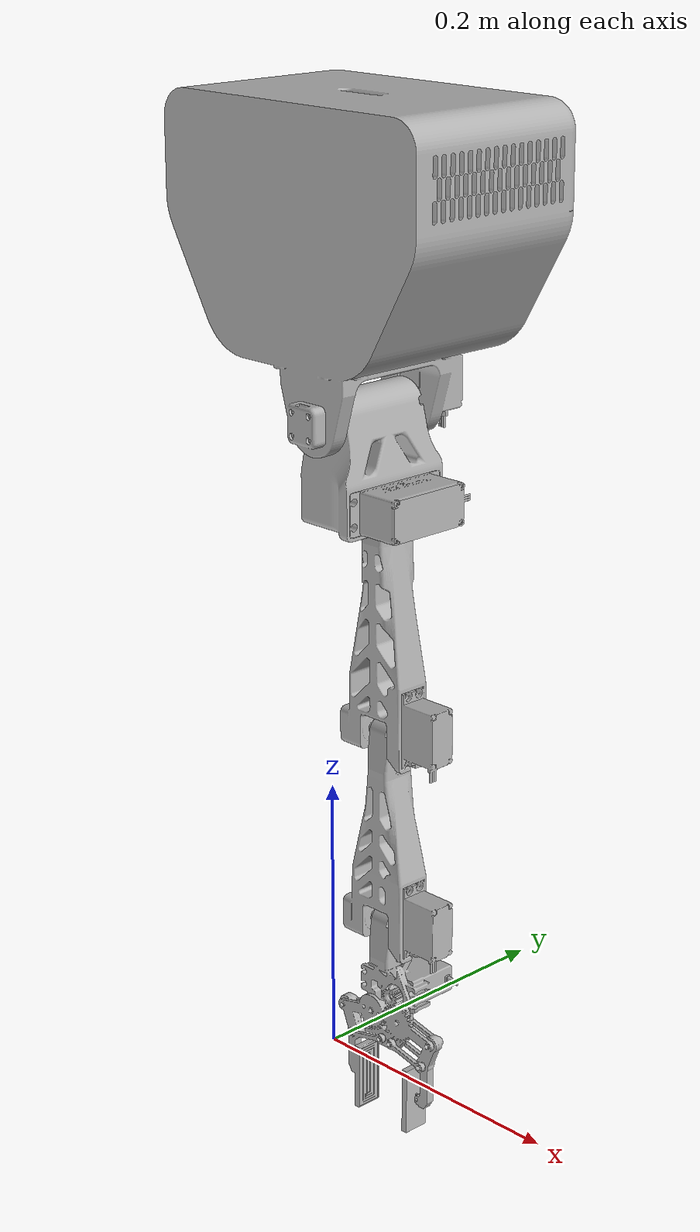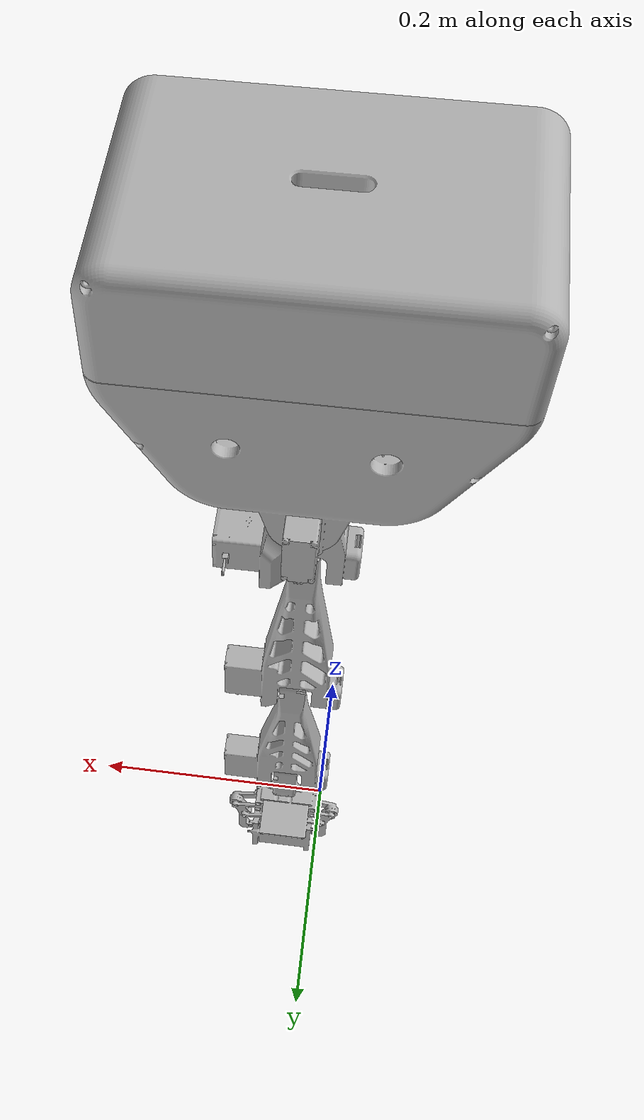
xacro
<?xml version="1.0" ?>
<robot name="WDD2_URDF_Export" xmlns:xacro="http://www.ros.org/wiki/xacro">

<xacro:include filename="$(find WDD2_URDF_Export_description)/urdf/materials.xacro" />
<xacro:include filename="$(find WDD2_URDF_Export_description)/urdf/WDD2_URDF_Export.trans" />
<xacro:include filename="$(find WDD2_URDF_Export_description)/urdf/WDD2_URDF_Export.gazebo" />
<link name="base_link">
  <inertial>
    <origin xyz="0.029133051866286376 0.00940720014332494 0.5944684988914619" rpy="0 0 0"/>
    <mass value="2.542636799630123"/>
    <inertia ixx="0.017445" iyy="0.022461" izz="0.018074" ixy="-2e-06" iyz="0.000126" ixz="1e-06"/>
  </inertial>
  <visual>
    <origin xyz="0 0 0" rpy="0 0 0"/>
    <geometry>
      <mesh filename="package://WDD2_URDF_Export_description/meshes/base_link.stl" scale="0.001 0.001 0.001"/>
    </geometry>
    <material name="silver"/>
  </visual>
  <collision>
    <origin xyz="0 0 0" rpy="0 0 0"/>
    <geometry>
      <mesh filename="package://WDD2_URDF_Export_description/meshes/base_link.stl" scale="0.001 0.001 0.001"/>
    </geometry>
  </collision>
</link>

<link name="turntable_link_1">
  <inertial>
    <origin xyz="0.010354867246820752 0.03485333860242344 -0.041211933673383605" rpy="0 0 0"/>
    <mass value="0.4569441635396091"/>
    <inertia ixx="0.000468" iyy="0.000512" izz="0.000437" ixy="5e-06" iyz="-5e-06" ixz="7.9e-05"/>
  </inertial>
  <visual>
    <origin xyz="-0.029124 0.028703 -0.475" rpy="0 0 0"/>
    <geometry>
      <mesh filename="package://WDD2_URDF_Export_description/meshes/turntable_link_1.stl" scale="0.001 0.001 0.001"/>
    </geometry>
    <material name="silver"/>
  </visual>
  <collision>
    <origin xyz="-0.029124 0.028703 -0.475" rpy="0 0 0"/>
    <geometry>
      <mesh filename="package://WDD2_URDF_Export_description/meshes/turntable_link_1.stl" scale="0.001 0.001 0.001"/>
    </geometry>
  </collision>
</link>

<link name="upper_arm_link_1">
  <inertial>
    <origin xyz="0.018912413132144385 0.0014197425789116286 -0.1204929417639426" rpy="0 0 0"/>
    <mass value="0.22910498645177246"/>
    <inertia ixx="0.000777" iyy="0.00086" izz="0.000108" ixy="-0.0" iyz="0.0" ixz="6.5e-05"/>
  </inertial>
  <visual>
    <origin xyz="-0.016399 -0.024497 -0.416755" rpy="0 0 0"/>
    <geometry>
      <mesh filename="package://WDD2_URDF_Export_description/meshes/upper_arm_link_1.stl" scale="0.001 0.001 0.001"/>
    </geometry>
    <material name="silver"/>
  </visual>
  <collision>
    <origin xyz="-0.016399 -0.024497 -0.416755" rpy="0 0 0"/>
    <geometry>
      <mesh filename="package://WDD2_URDF_Export_description/meshes/upper_arm_link_1.stl" scale="0.001 0.001 0.001"/>
    </geometry>
  </collision>
</link>

<link name="forearm_link_1">
  <inertial>
    <origin xyz="0.01851922020392568 0.0014250667393331667 -0.10555347876998847" rpy="0 0 0"/>
    <mass value="0.20968014247381014"/>
    <inertia ixx="0.000416" iyy="0.000501" izz="0.000105" ixy="-0.0" iyz="0.0" ixz="4.2e-05"/>
  </inertial>
  <visual>
    <origin xyz="-0.01925 -0.024531 -0.241755" rpy="0 0 0"/>
    <geometry>
      <mesh filename="package://WDD2_URDF_Export_description/meshes/forearm_link_1.stl" scale="0.001 0.001 0.001"/>
    </geometry>
    <material name="silver"/>
  </visual>
  <collision>
    <origin xyz="-0.01925 -0.024531 -0.241755" rpy="0 0 0"/>
    <geometry>
      <mesh filename="package://WDD2_URDF_Export_description/meshes/forearm_link_1.stl" scale="0.001 0.001 0.001"/>
    </geometry>
  </collision>
</link>

<link name="gripper_link_1">
  <inertial>
    <origin xyz="0.008338893538457206 0.007155203003616339 -0.06374679829400297" rpy="0 0 0"/>
    <mass value="0.18542696815557067"/>
    <inertia ixx="0.000321" iyy="0.000358" izz="9.4e-05" ixy="4e-06" iyz="-1e-05" ixz="3e-06"/>
  </inertial>
  <visual>
    <origin xyz="-0.022 -0.024565 -0.096756" rpy="0 0 0"/>
    <geometry>
      <mesh filename="package://WDD2_URDF_Export_description/meshes/gripper_link_1.stl" scale="0.001 0.001 0.001"/>
    </geometry>
    <material name="silver"/>
  </visual>
  <collision>
    <origin xyz="-0.022 -0.024565 -0.096756" rpy="0 0 0"/>
    <geometry>
      <mesh filename="package://WDD2_URDF_Export_description/meshes/gripper_link_1.stl" scale="0.001 0.001 0.001"/>
    </geometry>
  </collision>
</link>

<joint name="Revolute 1" type="revolute">
  <origin xyz="0.029124 -0.028703 0.475" rpy="0 0 0"/>
  <parent link="base_link"/>
  <child link="turntable_link_1"/>
  <axis xyz="0.0 -1.0 -0.0"/>
  <limit upper="1.22173" lower="-1.22173" effort="100" velocity="100"/>
</joint>

<joint name="Revolute 2" type="revolute">
  <origin xyz="-0.012725 0.0532 -0.058245" rpy="0 0 0"/>
  <parent link="turntable_link_1"/>
  <child link="upper_arm_link_1"/>
  <axis xyz="-1.0 -0.0 -0.0"/>
  <limit upper="0.523599" lower="-1.308997" effort="100" velocity="100"/>
</joint>

<joint name="Revolute 3" type="revolute">
  <origin xyz="0.002851 3.4e-05 -0.175" rpy="0 0 0"/>
  <parent link="upper_arm_link_1"/>
  <child link="forearm_link_1"/>
  <axis xyz="1.0 0.0 0.0"/>
  <limit upper="1.570796" lower="-1.570796" effort="100" velocity="100"/>
</joint>

<joint name="Revolute 4" type="revolute">
  <origin xyz="0.00275 3.4e-05 -0.144999" rpy="0 0 0"/>
  <parent link="forearm_link_1"/>
  <child link="gripper_link_1"/>
  <axis xyz="1.0 0.0 0.0"/>
  <limit upper="2.007129" lower="-1.48353" effort="100" velocity="100"/>
</joint>

</robot>

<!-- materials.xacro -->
<robot name="WDD2_URDF_Export" xmlns:xacro="http://www.ros.org/wiki/xacro" >

<material name="silver">
  <color rgba="0.700 0.700 0.700 1.000"/>
</material>

</robot>

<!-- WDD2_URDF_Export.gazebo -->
<robot name="WDD2_URDF_Export" xmlns:xacro="http://www.ros.org/wiki/xacro" >

<xacro:property name="body_color" value="Gazebo/Silver" />

<gazebo>
  <plugin name="control" filename="libgazebo_ros_control.so"/>
</gazebo>
<gazebo reference="base_link">
  <material>${body_color}</material>
  <mu1>0.2</mu1>
  <mu2>0.2</mu2>
  <selfCollide>true</selfCollide>
  <gravity>true</gravity>
</gazebo>

<gazebo reference="turntable_link_1">
  <material>${body_color}</material>
  <mu1>0.2</mu1>
  <mu2>0.2</mu2>
  <selfCollide>true</selfCollide>
</gazebo>

<gazebo reference="upper_arm_link_1">
  <material>${body_color}</material>
  <mu1>0.2</mu1>
  <mu2>0.2</mu2>
  <selfCollide>true</selfCollide>
</gazebo>

<gazebo reference="forearm_link_1">
  <material>${body_color}</material>
  <mu1>0.2</mu1>
  <mu2>0.2</mu2>
  <selfCollide>true</selfCollide>
</gazebo>

<gazebo reference="gripper_link_1">
  <material>${body_color}</material>
  <mu1>0.2</mu1>
  <mu2>0.2</mu2>
  <selfCollide>true</selfCollide>
</gazebo>

</robot>
